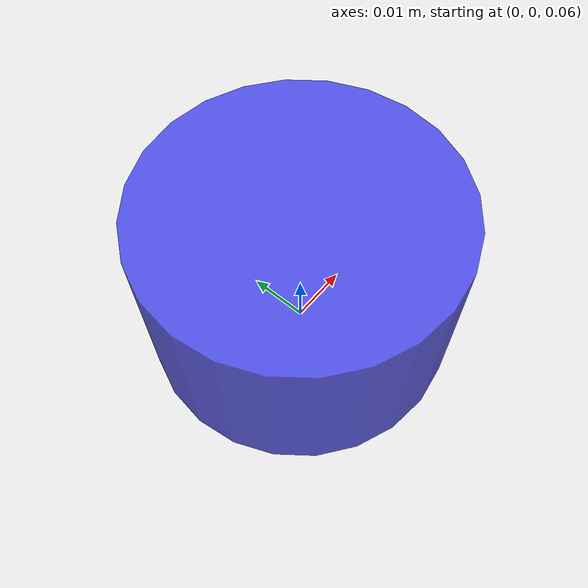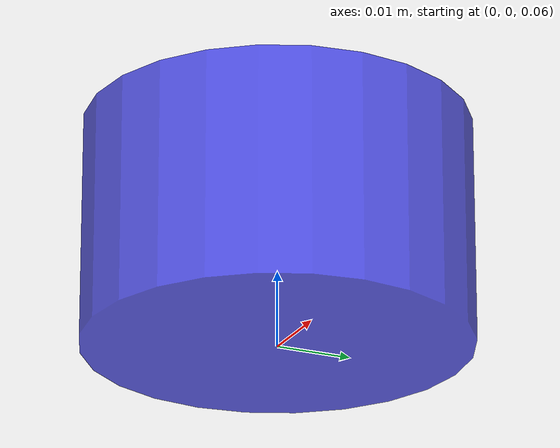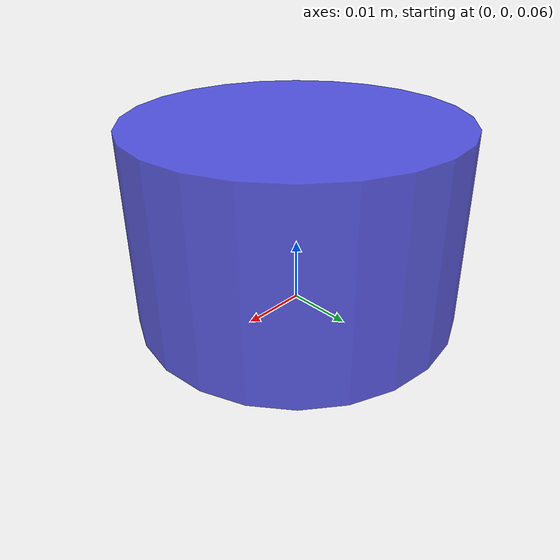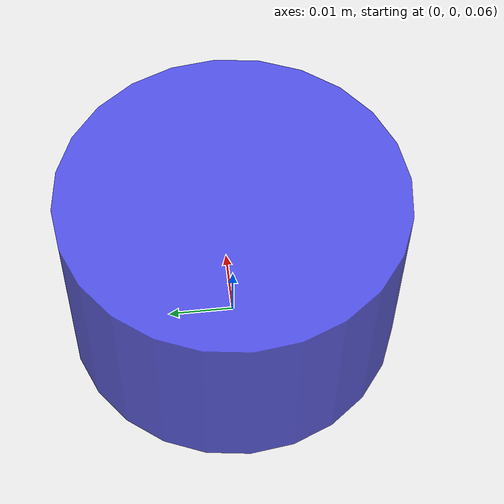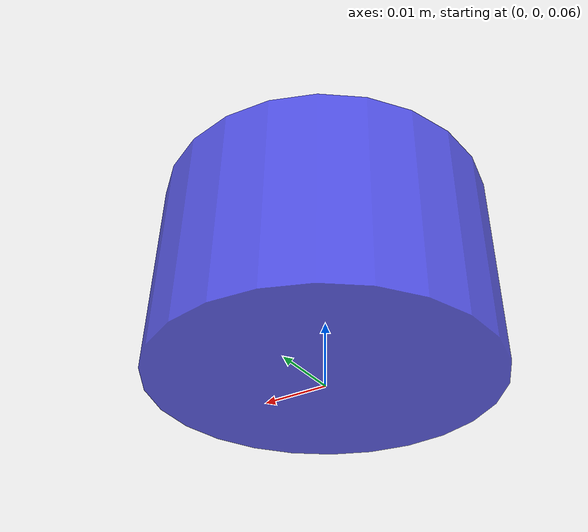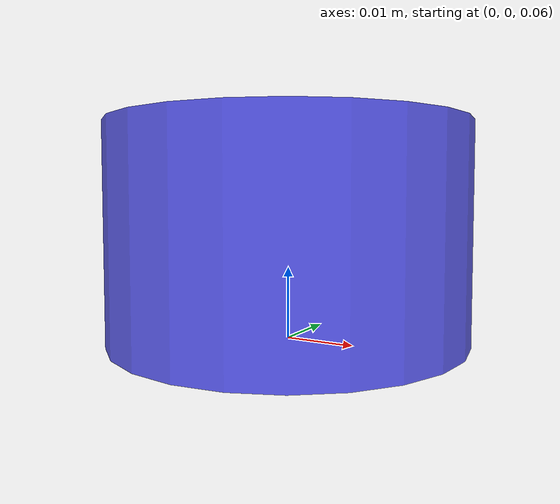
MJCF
<!-- Simple mocap-controlled pusher arm (easy difficulty).
     ee_frame matches the SO-101 end-effector body name. -->
<mujoco model="simple_arm">
  <worldbody>
    <body name="mocap_target" mocap="true" pos="0.0 0 0.075">
      <geom type="sphere" size="0.008" rgba="1 0 0 0.6"
            contype="0" conaffinity="0"/>
    </body>
    <!-- Heavy dynamic body welded to mocap_target; does the actual pushing.
         Mass=2kg ensures contact forces push objects rather than deflecting. -->
    <body name="ee_frame" pos="0.0 0 0.075">
      <joint name="joint1" type="free"/>
      <geom type="cylinder" size="0.025 0.015" rgba="0.2 0.2 0.9 0.8"
            contype="1" conaffinity="1" mass="2.0"/>
    </body>
  </worldbody>
  <equality>
    <weld body1="ee_frame" body2="mocap_target"
          solref="0.002 1" solimp="0.99 0.999 0.0001"/>
  </equality>
</mujoco>
